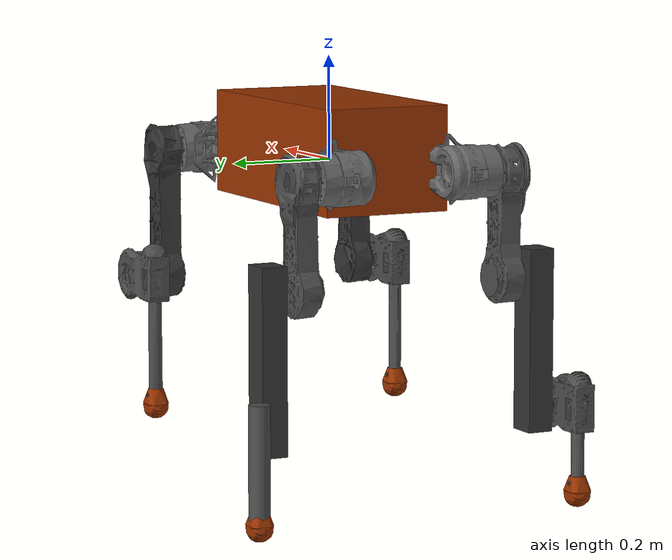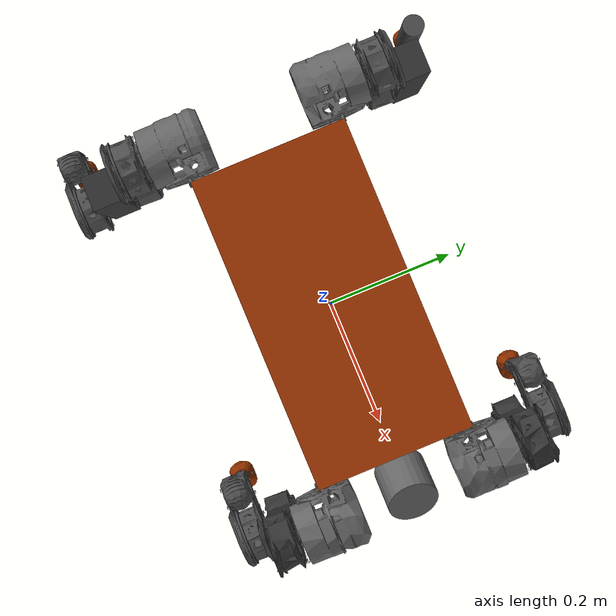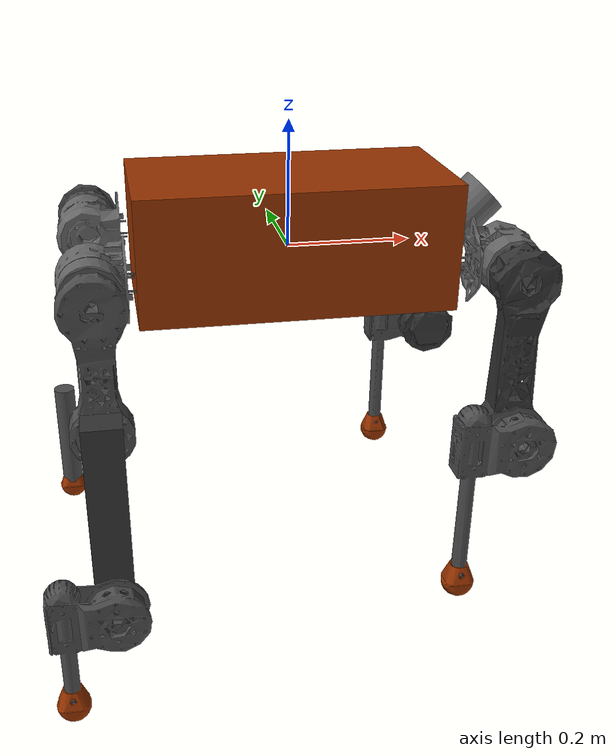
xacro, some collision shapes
<?xml version="1.0" encoding="utf-8"?>
<robot xmlns:xacro="http://ros.org/wiki/xacro" name="ContinuO">
  <xacro:include filename="$(find quadruped_description)/urdf/robot.gazebo"/>

  <link name="base_link" />
  <joint name="dummy_joint" type="fixed">
    <parent link="base_link" />
    <child link="base" />
  </joint>

  <material name="orange">
    <color rgba="0.12 0.15 0.2 1.0"/>
  </material>
  <material name="red">
    <color rgba="0.6 0.2 0.0 1.0"/>
  </material>
  <material name="black">
    <color rgba="0.4 0.4 0.4 1.0"/>
  </material>
  <material name="black1">
    <color rgba="0.3 0.3 0.3 1.0"/>
  </material>
  <material name="black2">
    <color rgba="0.2 0.2 0.2 1.0"/>
  </material>
  <material name="black3">
    <color rgba="0.3 0.3 0.3 1.0"/>
  </material>
  <material name="silver">
    <color rgba="0.79216 0.81961 0.93333 1"/>
  </material>
  <link
    name="base">

    <inertial>
      <origin
        xyz="-0.02 0.000061 0.008445"
        rpy="0 0 0" />
      <mass value="15.342" />
      <inertia
        ixx="131477391.556e-9"
        ixy="-35656.795e-9"
        ixz="257886.739e-9"
        iyy="328587491.167e-9"
        iyz="31766.975e-9"
        izz="423802600.524e-9" />
    </inertial>
    <visual>
      <origin
        xyz="0 0 0"
        rpy="0 0 0" />
      <geometry>
        <mesh
          filename="package://quadruped_description/meshes/base.dae" />
      </geometry>
      <material name="red"/>
    </visual>
    <collision>
      <origin
        xyz="0 0 0.02"
        rpy="0 0 0" />
      <geometry>
        <box size="0.5 0.25 0.2" />
      </geometry>
    </collision>
  </link>

  <link name="os_sensor">
    <inertial>
      <origin xyz="0 0 0" rpy="0 0 0" />
      <mass value="0.425" />
      <inertia ixx="0.0001" ixy="0" ixz="0" iyy="0.0001" iyz="0" izz="0.0001" />
    </inertial>
    <visual>
      <origin xyz="0 0 0" rpy="0 0 0" />
      <geometry>
        <cylinder radius="0.04" length="0.073" />
      </geometry>
      <material name="black" />
    </visual>
    <collision>
      <origin xyz="0 0 0" rpy="0 0 0" />
      <geometry>
        <cylinder radius="0.04" length="0.073" />
      </geometry>
    </collision>
  </link>

  <joint name="base_to_lidar" type="fixed">
    <origin xyz="0.3 0 0.05" rpy="0 0.7854 0" />
    <parent link="base" />
    <child link="os_sensor" />
  </joint>

  <link
    name="FL_SHOULDER">
    <inertial>
      <origin
        xyz="51.772e-3 21.258e-3 -0.161e-3"
        rpy="0 0 0" />
      <mass
        value="1.276" />
      <inertia
        ixx="1862413.216e-9"
        ixy="34307.720e-9"
        ixz="1836.088e-9"
        iyy="1745876.060e-9"
        iyz="127.529e-9"
        izz="1887209.589e-9" />
    </inertial>
    <visual>
      <origin
        xyz="0 0 0"
        rpy="0 0 0" />
      <geometry>
        <mesh
          filename="package://quadruped_description/meshes/FL_SHOULDER.dae" />
      </geometry>
      <material name="black"/>
    </visual>
    <collision>
      <origin
        xyz="0.054 0 0"
        rpy="0 0 0" />
      <geometry>
        <box size="0.1 0.1 0.1" />
      </geometry>
    </collision>
  </link>
  <joint
    name="FL_HAA"
    type="revolute">
    <origin
      xyz="0.2635 0.12291 0"
      rpy="0 0 0" />
    <parent
      link="base" />
    <child
      link="FL_SHOULDER" />
    <axis
      xyz="1 0 0" />
    <dynamics
    	damping="0.7"
    	friction="0.0" />
    <limit
      lower="-3.14"
      upper="3.14"
      effort="85.0"
      velocity="16.75" />
  </joint>
  <link
    name="FL_UPPER_LEG">
    <inertial>
      <origin
        xyz="0.009e-3 25.634e-3 -165.001e-3"
        rpy="0 0 0" />
      <mass
        value="1.367" />
      <inertia
        ixx="16273403.695e-9"
        ixy="-161.140e-9"
        ixz="12937.356e-9"
        iyy="16691309.192e-9"
        iyz="130585.208e-9"
        izz="1167540.754e-9" />
    </inertial>
    <visual>
      <origin
        xyz="0 0 0"
        rpy="0 0 0" />
      <geometry>
        <mesh
          filename="package://quadruped_description/meshes/FL_UPPER_LEG.dae" />
      </geometry>
      <material name="black2"/>
    </visual>
    <collision>
      <origin
        xyz="0 0.032 -0.1232"
        rpy="0 0 0" />
      <geometry>
        <box size="0.1 0.05 0.3" />
      </geometry>
    </collision>
  </link>
  <joint
    name="FL_HFE"
    type="revolute">
    <origin
      xyz="0.053259 0.061836 -0.0001687"
      rpy="0 0 0" />
    <parent
      link="FL_SHOULDER" />
    <child
      link="FL_UPPER_LEG" />
    <axis
      xyz="0 1 0" />
    <dynamics
    	damping="0.9"
    	friction="0.0" />
    <limit
      lower="-3.14"
      upper="3.14"
      effort="80.0"
      velocity="23.04" />
  </joint>
  <link
    name="FL_LOWER_LEG">
    <inertial>
      <origin
        xyz="-41.308e-3 34.919e-3 -47.598e-3"
        rpy="0 0 0" />
      <mass
        value="0.759" />
      <inertia
        ixx="7966011.909e-9"
        ixy=" -9387.703e-9"
        ixz="1312983.562e-9"
        iyy="9247408.954e-9"
        iyz="-2373.514e-9"
        izz="1638567.052e-9" />
    </inertial>
    <visual>
      <origin
        xyz="0 0 0"
        rpy="0 0 0" />
      <geometry>
        <mesh
          filename="package://quadruped_description/meshes/FL_LOWER_LEG.dae" />
      </geometry>
      <material name="black3"/>
    </visual>
    <collision>
      <origin
        xyz="-0.0772 0.035 -0.09"
        rpy="0 0 0" />
      <geometry>
        <cylinder length="0.3" radius="0.02"/>
      </geometry>
    </collision>
  </link>
  <joint
    name="FL_KFE"
    type="revolute">
    <origin
      xyz="0 0.0465 -0.2465"
      rpy="0 0 0" />
    <parent
      link="FL_UPPER_LEG" />
    <child
      link="FL_LOWER_LEG" />
    <axis
      xyz="0 1 0" />
    <dynamics
    	damping="0.9"
    	friction="0.0" />
    <limit
      lower="-3.14"
      upper="3.14"
      effort="80.0"
      velocity="23.04" />
  </joint>
  <link
    name="FL_FOOT">
    <inertial>
      <origin
        xyz="35.896e-3 -0.081e-3 186.367e-3"
        rpy="0 0 0" />
      <mass
        value="0.01" />
      <inertia
        ixx="7966011.909e-9"
        ixy="-9387.703e-9"
        ixz="1312983.562e-9"
        iyy="9247408.954e-9"
        iyz="-2373.514e-9"
        izz="1638567.052e-9" />
    </inertial>
    <visual>
      <origin
        xyz="0 0 0"
        rpy="0 0 0" />
      <geometry>
        <mesh
          filename="package://quadruped_description/meshes/FL_FOOT.dae" />
      </geometry>
      <material name="red"/>
    </visual>
    <collision>
      <origin
        xyz="0 0 -0.02"
        rpy="0 0 0" />
      <geometry>
        <sphere radius="0.0267" />
      </geometry>
    </collision>
  </link>
  <joint
    name="FL_FOOT_JOINT"
    type="fixed"
    dont_collapse="true">
    <origin
      xyz="-0.077204 0.035 -0.23396"
      rpy="0 0 0" />
    <parent
      link="FL_LOWER_LEG" />
    <child
      link="FL_FOOT" />
    <axis
      xyz="0 0 0" />
  </joint>
  <link
    name="FR_SHOULDER">
    <inertial>
      <origin
        xyz="51.772e-3 -21.258e-3 -0.161e-3"
        rpy="0 0 0" />
      <mass
        value="1.276" />
      <inertia
        ixx="1862413.216e-9"
        ixy="-34307.720e-9"
        ixz="1836.088e-9"
        iyy="1745876.060e-9"
        iyz="-127.529e-9"
        izz="1887209.589e-9" />
    </inertial>
    <visual>
      <origin
        xyz="0 0 0"
        rpy="0 0 0" />
      <geometry>
        <mesh
          filename="package://quadruped_description/meshes/FR_SHOULDER.dae" />
      </geometry>
      <material name="black"/>
    </visual>
    <collision>
      <origin
        xyz="0.054 0 0"
        rpy="0 0 0" />
      <geometry>
        <box size="0.1 0.1 0.1" />
      </geometry>
    </collision>
  </link>
  <joint
    name="FR_HAA"
    type="revolute">
    <origin
      xyz="0.2635 -0.12291 0"
      rpy="0 0 0" />
    <parent
      link="base" />
    <child
      link="FR_SHOULDER" />
    <axis
      xyz="1 0 0" />
    <dynamics
    	damping="0.7"
    	friction="0.0" />
    <limit
      lower="-3.14"
      upper="3.14"
      effort="85.0"
      velocity="16.75" />
  </joint>
  <link
    name="FR_UPPER_LEG">
    <inertial>
      <origin
        xyz="0.009e-3 -25.634e-3 -165.001e-3"
        rpy="0 0 0" />
      <mass
        value="1.367" />
      <inertia
        ixx="16273403.695e-9"
        ixy="161.140e-9"
        ixz="12937.356e-9"
        iyy="16691309.192e-9"
        iyz="-130585.208e-9"
        izz="1167540.754e-9" />
    </inertial>
    <visual>
      <origin
        xyz="0 0 0"
        rpy="0 0 0" />
      <geometry>
        <mesh
          filename="package://quadruped_description/meshes/FR_UPPER_LEG.dae" />
      </geometry>
      <material name="black2"/>
    </visual>
    <collision>
      <origin
        xyz="0 -0.028 -0.1232"
        rpy="0 0 0" />
      <geometry>
        <box size="0.1 0.05 0.3" />
      </geometry>
    </collision>
  </link>
  <joint
    name="FR_HFE"
    type="revolute">
    <origin
      xyz="0.053259 -0.061836 9.9925E-05"
      rpy="0 0 0" />
    <parent
      link="FR_SHOULDER" />
    <child
      link="FR_UPPER_LEG" />
    <axis
      xyz="0 1 0" />
    <dynamics
    	damping="0.9"
    	friction="0.0" />
    <limit
      lower="-3.14"
      upper="3.14"
      effort="80.0"
      velocity="23.04" />
  </joint>
  <link
    name="FR_LOWER_LEG">
    <inertial>
      <origin
        xyz="-41.308e-3 -34.919e-3 -47.598e-3"
        rpy="0 0 0" />
      <mass
        value="0.759" />
      <inertia
        ixx="7966011.909e-9"
        ixy=" 9387.703e-9"
        ixz="1312983.562e-9"
        iyy="9247408.954e-9"
        iyz="2373.514e-9"
        izz="1638567.052e-9" />
    </inertial>
    <visual>
      <origin
        xyz="0 0 0"
        rpy="0 0 0" />
      <geometry>
        <mesh
          filename="package://quadruped_description/meshes/FR_LOWER_LEG.dae" />
      </geometry>
      <material name="black3"/>
    </visual>
    <collision>
      <origin
        xyz="-0.0772 -0.035 -0.09"
        rpy="0 0 0" />
      <geometry>
        <cylinder length="0.3" radius="0.02"/>
      </geometry>
    </collision>
  </link>
  <joint
    name="FR_KFE"
    type="revolute">
    <origin
      xyz="0 -0.0465 -0.2465"
      rpy="0 0 0" />
    <parent
      link="FR_UPPER_LEG" />
    <child
      link="FR_LOWER_LEG" />
    <axis
      xyz="0 1 0" />
    <dynamics
    	damping="0.9"
    	friction="0.0" />
    <limit
      lower="-3.14"
      upper="3.14"
      effort="80.0"
      velocity="23.04" />
  </joint>
  <link
    name="FR_FOOT">
    <inertial>
      <origin
        xyz="35.896e-3 0.081e-3 186.367e-3"
        rpy="0 0 0" />
      <mass
        value="0.01" />
      <inertia
        ixx="7966011.909e-9"
        ixy="9387.703e-9"
        ixz="1312983.562e-9"
        iyy="9247408.954e-9"
        iyz="2373.514e-9"
        izz="1638567.052e-9" />
    </inertial>
    <visual>
      <origin
        xyz="0 0 0"
        rpy="0 0 0" />
      <geometry>
        <mesh
          filename="package://quadruped_description/meshes/FR_FOOT.dae" />
      </geometry>
      <material name="red"/>
    </visual>
    <collision>
      <origin
        xyz="0 0 -0.02"
        rpy="0 0 0" />
      <geometry>
        <sphere radius="0.0267" />
      </geometry>
    </collision>
  </link>
  <joint
    name="FR_FOOT_JOINT"
    type="fixed"
    dont_collapse="true">
    <origin
      xyz="-0.07715 -0.035 -0.23396"
      rpy="0 0 0" />
    <parent
      link="FR_LOWER_LEG" />
    <child
      link="FR_FOOT" />
    <axis
      xyz="0 0 0" />
  </joint>
  <link
    name="HL_SHOULDER">
    <inertial>
      <origin
        xyz="-51.779e-3 21.258e-3 0.042e-3"
        rpy="0 0 0" />
      <mass
        value="1.276" />
      <inertia
        ixx="1862438.249e-9"
        ixy="-34011.999e-9"
        ixz="-510.439e-9"
        iyy="1745191.990e-9"
        iyz="-556.317e-9"
        izz="1886523.749e-9" />
    </inertial>
    <visual>
      <origin
        xyz="0 0 0"
        rpy="0 0 0" />
      <geometry>
        <mesh
          filename="package://quadruped_description/meshes/HL_SHOULDER.dae" />
      </geometry>
      <material name="black"/>
    </visual>
    <collision>
      <origin
        xyz="-0.054 0 0"
        rpy="0 0 0" />
      <geometry>
        <box size="0.1 0.1 0.1" />
      </geometry>
    </collision>
  </link>
  <joint
    name="HL_HAA"
    type="revolute">
    <origin
      xyz="-0.2635 0.12291 0"
      rpy="0 0 0" />
    <parent
      link="base" />
    <child
      link="HL_SHOULDER" />
    <axis
      xyz="1 0 0" />
    <dynamics
    	damping="0.7"
    	friction="0.0" />
    <limit
      lower="-3.14"
      upper="3.14"
      effort="85.0"
      velocity="16.75" />
  </joint>
  <link
    name="HL_UPPER_LEG">
    <inertial>
      <origin
        xyz="0.003e-3 25.470e-3 -134.787e-3"
        rpy="0 0 0" />
      <mass
        value="1.315" />
      <inertia
        ixx="11053712.614e-9"
        ixy="-166.896e-9"
        ixz="13255.147e-9"
        iyy="11463665.170e-9"
        iyz="105489.550e-9"
        izz="1146965.026e-9" />
    </inertial>
    <visual>
      <origin
        xyz="0 0 0"
        rpy="0 0 0" />
      <geometry>
        <mesh
          filename="package://quadruped_description/meshes/HL_UPPER_LEG.dae" />
      </geometry>
      <material name="black1"/>
    </visual>
    <collision>
      <origin
        xyz="0 0.028 -0.1005"
        rpy="0 0 0" />
      <geometry>
        <box size="0.08 0.05 0.26" />
      </geometry>
    </collision>
  </link>
  <joint
    name="HL_HFE"
    type="revolute">
    <origin
      xyz="-0.053259 0.061836 9.9925E-05"
      rpy="0 0 0" />
    <parent
      link="HL_SHOULDER" />
    <child
      link="HL_UPPER_LEG" />
    <axis
      xyz="0 1 0" />
    <dynamics
    	damping="0.9"
    	friction="0.0" />
    <limit
      lower="-3.14"
      upper="3.14"
      effort="85.0"
      velocity="16.75" />
  </joint>
  <link
    name="HL_LOWER_LEG">
    <inertial>
      <origin
        xyz=" 0.005e-3 41.724e-3 -160.773e-3"
        rpy="0 0 0" />
      <mass
        value="1.406" />
      <inertia
        ixx="17322697.149e-9"
        ixy="-166.299e-9"
        ixz="13745.847e-9"
        iyy="17702007.589e-9"
        iyz=" -74976.358e-9"
        izz="1218582.595e-9" />
    </inertial>
    <visual>
      <origin
        xyz="0 0 0"
        rpy="0 0 0" />
      <geometry>
        <mesh
          filename="package://quadruped_description/meshes/HL_LOWER_LEG.dae" />
      </geometry>
      <material name="black2"/>
    </visual>
    <collision>
      <origin
        xyz="0 0.045 -0.1233"
        rpy="0 0 0" />
      <geometry>
        <box size="0.06 0.05 0.35" />
      </geometry>
    </collision>
  </link>
  <joint
    name="HL_KFE"
    type="revolute">
    <origin
      xyz="0 0.0465 -0.201"
      rpy="0 0 0" />
    <parent
      link="HL_UPPER_LEG" />
    <child
      link="HL_LOWER_LEG" />
    <axis
      xyz="0 1 0" />
    <dynamics
    	damping="0.9"
    	friction="0.0" />
    <limit
      lower="-3.14"
      upper="3.14"
      effort="80.0"
      velocity="23.04" />
  </joint>
  <link
    name="HL_SHANK">
    <inertial>
      <origin
        xyz="-40.122e-3 34.916e-3 -27.409e-3"
        rpy="0 0 0" />
      <mass
        value="0.734" />
      <inertia
        ixx="3597127.046e-9"
        ixy="-9314.367e-9"
        ixz="762796.820e-9"
        iyy="4846202.923e-9"
        iyz="-1133.290e-9"
        izz="1602960.774e-9" />
    </inertial>
    <visual>
      <origin
        xyz="0 0 0"
        rpy="0 0 0" />
      <geometry>
        <mesh
          filename="package://quadruped_description/meshes/HL_SHANK.dae" />
      </geometry>
      <material name="black3"/>
    </visual>
    <collision>
      <origin
        xyz="-0.0772 0.035 -0.045"
        rpy="0 0 0" />
      <geometry>
        <cylinder length="0.21" radius="0.02"/>
      </geometry>
    </collision>
  </link>
  <joint
    name="HL_AFE"
    type="revolute">
    <origin
      xyz="0 0.0635 -0.2465"
      rpy="0 0 0" />
    <parent
      link="HL_LOWER_LEG" />
    <child
      link="HL_SHANK" />
    <axis
      xyz="0 1 0" />
    <dynamics
    	damping="0.9"
    	friction="0.0" />
    <limit
      lower="-3.14"
      upper="3.14"
      effort="80.0"
      velocity="23.04" />
  </joint>
  <link
    name="HL_FOOT">
    <inertial>
      <origin
        xyz="37.082e-3 -0.084e-3 116.555e-3"
        rpy="0 0 0" />
      <mass
        value="0.01" />
      <inertia
        ixx="3597127.046e-9"
        ixy="-9314.367e-9"
        ixz="762796.820e-9"
        iyy="4846202.923e-9"
        iyz="-1133.290e-9"
        izz="1602960.774e-9" />
    </inertial>
    <visual>
      <origin
        xyz="0 0 0"
        rpy="0 0 0" />
      <geometry>
        <mesh
          filename="package://quadruped_description/meshes/HL_FOOT.dae" />
      </geometry>
      <material name="red"/>
    </visual>
    <collision>
      <origin
        xyz="0 0 -0.02"
        rpy="0 0 0" />
      <geometry>
        <sphere radius="0.0267" />
      </geometry>
    </collision>
  </link>
  <joint
    name="HL_FOOT_JOINT"
    type="fixed"
    dont_collapse="true">
    <origin
      xyz="-0.077204 0.035 -0.14396"
      rpy="0 0 0" />
    <parent
      link="HL_SHANK" />
    <child
      link="HL_FOOT" />
    <axis
      xyz="0 0 0" />
  </joint>
  <link
    name="HR_SHOULDER">
    <inertial>
      <origin
        xyz="-51.779e-3 -21.258e-3 0.042e-3"
        rpy="0 0 0" />
      <mass
        value="1.276" />
      <inertia
        ixx="1862438.249e-9"
        ixy="34011.999e-9"
        ixz="-510.439e-9"
        iyy="1745191.990e-9"
        iyz="556.317e-9"
        izz="1886523.749e-9" />
    </inertial>
    <visual>
      <origin
        xyz="0 0 0"
        rpy="0 0 0" />
      <geometry>
        <mesh
          filename="package://quadruped_description/meshes/HR_SHOULDER.dae" />
      </geometry>
      <material name="black"/>
    </visual>
    <collision>
      <origin
        xyz="-0.054 0 0"
        rpy="0 0 0" />
      <geometry>
        <box size="0.1 0.1 0.1" />
      </geometry>
    </collision>
  </link>
  <joint
    name="HR_HAA"
    type="revolute">
    <origin
      xyz="-0.2635 -0.12291 0"
      rpy="0 0 0" />
    <parent
      link="base" />
    <child
      link="HR_SHOULDER" />
    <axis
      xyz="1 0 0" />
    <dynamics
    	damping="0.7"
    	friction="0.0" />
    <limit
      lower="-3.14"
      upper="3.14"
      effort="85.0"
      velocity="16.75" />
  </joint>
  <link
    name="HR_UPPER_LEG">
    <inertial>
      <origin
        xyz="0.003e-3 -25.470e-3 -134.787e-3"
        rpy="0 0 0" />
      <mass
        value="1.315" />
      <inertia
        ixx="11053712.614e-9"
        ixy="166.896e-9"
        ixz="13255.147e-9"
        iyy="11463665.170e-9"
        iyz="-105489.550e-9"
        izz="1146965.026e-9" />
    </inertial>
    <visual>
      <origin
        xyz="0 0 0"
        rpy="0 0 0" />
      <geometry>
        <mesh
          filename="package://quadruped_description/meshes/HR_UPPER_LEG.dae" />
      </geometry>
      <material name="black1"/>
    </visual>
    <collision>
      <origin
        xyz="0 -0.028 -0.1005"
        rpy="0 0 0" />
      <geometry>
        <box size="0.08 0.05 0.26" />
      </geometry>
    </collision>
  </link>
  <joint
    name="HR_HFE"
    type="revolute">
    <origin
      xyz="-0.053259 -0.061836 -0.0001687"
      rpy="0 0 0" />
    <parent
      link="HR_SHOULDER" />
    <child
      link="HR_UPPER_LEG" />
    <axis
      xyz="0 1 0" />
    <dynamics
    	damping="0.9"
    	friction="0.0" />
    <limit
      lower="-3.14"
      upper="3.14"
      effort="85.0"
      velocity="16.75" />
  </joint>
  <link
    name="HR_LOWER_LEG">
    <inertial>
      <origin
        xyz="-40.122e-3 -34.916e-3 -27.409e-3"
        rpy="0 0 0" />
      <!-- Fixed incorrect mass -->
      <mass
        value="1.406" />
      <inertia
        ixx="3597127.046e-9"
        ixy="9314.367e-9"
        ixz="762796.820e-9"
        iyy="4846202.923e-9"
        iyz="1133.290e-9"
        izz="1602960.774e-9" />
    </inertial>
    <visual>
      <origin
        xyz="0 0 0"
        rpy="0 0 0" />
      <geometry>
        <mesh
          filename="package://quadruped_description/meshes/HR_LOWER_LEG.dae" />
      </geometry>
      <material name="black2"/>
    </visual>
    <collision>
      <origin
        xyz="0 -0.045 -0.1232"
        rpy="0 0 0" />
      <geometry>
        <box size="0.06 0.05 0.35" />
      </geometry>
    </collision>
  </link>
  <joint
    name="HR_KFE"
    type="revolute">
    <origin
      xyz="0 -0.0465 -0.201"
      rpy="0 0 0" />
    <parent
      link="HR_UPPER_LEG" />
    <child
      link="HR_LOWER_LEG" />
    <axis
      xyz="0 1 0" />
    <dynamics
    	damping="0.9"
    	friction="0.0" />
    <limit
      lower="-3.14"
      upper="3.14"
      effort="80.0"
      velocity="23.04" />
  </joint>
  <link
    name="HR_SHANK">
    <inertial>
      <origin
        xyz="-40.122e-3 -34.916e-3 -27.409e-3"
        rpy="0 0 0" />
      <mass
        value="0.734" />
      <inertia
        ixx="3597127.046e-9"
        ixy="9314.367e-9"
        ixz="762796.820e-9"
        iyy="4846202.923e-9"
        iyz="1133.290e-9"
        izz="1602960.774e-9" />
    </inertial>
    <visual>
      <origin
        xyz="0 0 0"
        rpy="0 0 0" />
      <geometry>
        <mesh
          filename="package://quadruped_description/meshes/HR_SHANK.dae" />
      </geometry>
      <material name="black3"/>
    </visual>
    <collision>
      <origin
        xyz="-0.0772 -0.035 -0.045"
        rpy="0 0 0" />
      <geometry>
        <cylinder length="0.21" radius="0.02"/>
      </geometry>
    </collision>
  </link>
  <joint
    name="HR_AFE"
    type="revolute">
    <origin
      xyz="0 -0.0635 -0.2465"
      rpy="0 0 0" />
    <parent
      link="HR_LOWER_LEG" />
    <child
      link="HR_SHANK" />
    <axis
      xyz="0 1 0" />
    <dynamics
    	damping="0.9"
    	friction="0.0" />
    <limit
      lower="-3.14"
      upper="3.14"
      effort="80.0"
      velocity="23.04" />
  </joint>
  <link
    name="HR_FOOT">
    <inertial>
      <origin
        xyz="37.082e-3 0.084e-3 116.555e-3"
        rpy="0 0 0" />
      <mass
        value="0.01" />
      <inertia
        ixx="3597127.046e-9"
        ixy="9314.367e-9"
        ixz="762796.820e-9"
        iyy="4846202.923e-9"
        iyz="1133.290e-9"
        izz="1602960.774e-9" />
    </inertial>
    <visual>
      <origin
        xyz="0 0 0"
        rpy="0 0 0" />
      <geometry>
        <mesh
          filename="package://quadruped_description/meshes/HR_FOOT.dae" />
      </geometry>
      <material name="red"/>
    </visual>
    <collision>
      <origin
        xyz="0 0 -0.02"
        rpy="0 0 0" />
      <geometry>
        <sphere radius="0.0267" />
      </geometry>
    </collision>
  </link>
  <joint
    name="HR_FOOT_JOINT"
    type="fixed"
    dont_collapse="true">
    <origin
      xyz="-0.077203 -0.035 -0.14396"
      rpy="0 0 0" />
    <parent
      link="HR_SHANK" />
    <child
      link="HR_FOOT" />
    <axis
      xyz="0 0 0" />
  </joint>

  <gazebo>
    <plugin name="gazebo_ros_control" filename="libgazebo_ros_control.so">
      <robotNamespace>/</robotNamespace>
    </plugin>
  </gazebo>
  <gazebo reference="os_sensor">
    <sensor type="ray" name="ouster_sensor">
      <pose>0 0 0 0 0 0</pose>
      <visualize>false</visualize>
      <always_on>true</always_on>
      <update_rate>10.0</update_rate>
      <ray>
        <scan>
          <horizontal>
            <samples>512</samples>
            <resolution>1</resolution>
            <min_angle>-1.5708</min_angle>
            <max_angle>1.5708</max_angle>
          </horizontal>
          <vertical>
            <samples>64</samples>
            <resolution>1</resolution>
            <min_angle>-0.785398</min_angle> <max_angle>0.785398</max_angle>
          </vertical>
        </scan>
        <range>
          <min>0.5</min>
          <max>100.0</max>
          <resolution>0.01</resolution>
        </range>
        <noise>
          <type>gaussian</type>
          <mean>0.0</mean>
          <stddev>0.01</stddev>
        </noise>
      </ray>
      <plugin name="gazebo_ros_laser_controller" filename="libgazebo_ros_velodyne_laser.so">
        <topicName>/ouster/points</topicName>
        <frameName>os_sensor</frameName>
        <organize_cloud>false</organize_cloud>
        <min_range>0.1</min_range>
        <max_range>100.0</max_range>
        <gaussianNoise>0.01</gaussianNoise>
      </plugin>
    </sensor>
  </gazebo>
  <gazebo>
    <plugin name="ground_truth_odometry" filename="libgazebo_ros_p3d.so">
      <alwaysOn>true</alwaysOn>
      <bodyName>base_link</bodyName>
      <updateRate>50.0</updateRate>
      <topicName>/odom</topicName>
      <gaussianNoise>0.01</gaussianNoise>
      <frameName>world</frameName>
      <xyzOffsets>0 0 0</xyzOffsets>
      <rpyOffsets>0 0 0</rpyOffsets>
    </plugin>
  </gazebo>

<transmission name="trans_FL_HAA">
  <type>transmission_interface/SimpleTransmission</type>
  <joint name="FL_HAA">
    <hardwareInterface>EffortJointInterface</hardwareInterface>
  </joint>
  <actuator name="motor_FL_HAA">
    <hardwareInterface>EffortJointInterface</hardwareInterface>
    <mechanicalReduction>1</mechanicalReduction>
  </actuator>
</transmission>

<transmission name="trans_FL_HFE">
  <type>transmission_interface/SimpleTransmission</type>
  <joint name="FL_HFE">
    <hardwareInterface>EffortJointInterface</hardwareInterface>
  </joint>
  <actuator name="motor_FL_HFE">
    <hardwareInterface>EffortJointInterface</hardwareInterface>
    <mechanicalReduction>1</mechanicalReduction>
  </actuator>
</transmission>

<transmission name="trans_FL_KFE">
  <type>transmission_interface/SimpleTransmission</type>
  <joint name="FL_KFE">
    <hardwareInterface>EffortJointInterface</hardwareInterface>
  </joint>
  <actuator name="motor_FL_KFE">
    <hardwareInterface>EffortJointInterface</hardwareInterface>
    <mechanicalReduction>1</mechanicalReduction>
  </actuator>
</transmission>

<transmission name="trans_FR_HAA">
  <type>transmission_interface/SimpleTransmission</type>
  <joint name="FR_HAA">
    <hardwareInterface>EffortJointInterface</hardwareInterface>
  </joint>
  <actuator name="motor_FR_HAA">
    <hardwareInterface>EffortJointInterface</hardwareInterface>
    <mechanicalReduction>1</mechanicalReduction>
  </actuator>
</transmission>

<transmission name="trans_FR_HFE">
  <type>transmission_interface/SimpleTransmission</type>
  <joint name="FR_HFE">
    <hardwareInterface>EffortJointInterface</hardwareInterface>
  </joint>
  <actuator name="motor_FR_HFE">
    <hardwareInterface>EffortJointInterface</hardwareInterface>
    <mechanicalReduction>1</mechanicalReduction>
  </actuator>
</transmission>

<transmission name="trans_FR_KFE">
  <type>transmission_interface/SimpleTransmission</type>
  <joint name="FR_KFE">
    <hardwareInterface>EffortJointInterface</hardwareInterface>
  </joint>
  <actuator name="motor_FR_KFE">
    <hardwareInterface>EffortJointInterface</hardwareInterface>
    <mechanicalReduction>1</mechanicalReduction>
  </actuator>
</transmission>

<transmission name="trans_HL_HAA">
  <type>transmission_interface/SimpleTransmission</type>
  <joint name="HL_HAA">
    <hardwareInterface>EffortJointInterface</hardwareInterface>
  </joint>
  <actuator name="motor_HL_HAA">
    <hardwareInterface>EffortJointInterface</hardwareInterface>
    <mechanicalReduction>1</mechanicalReduction>
  </actuator>
</transmission>

<transmission name="trans_HL_HFE">
  <type>transmission_interface/SimpleTransmission</type>
  <joint name="HL_HFE">
    <hardwareInterface>EffortJointInterface</hardwareInterface>
  </joint>
  <actuator name="motor_HL_HFE">
    <hardwareInterface>EffortJointInterface</hardwareInterface>
    <mechanicalReduction>1</mechanicalReduction>
  </actuator>
</transmission>

<transmission name="trans_HL_KFE">
  <type>transmission_interface/SimpleTransmission</type>
  <joint name="HL_KFE">
    <hardwareInterface>EffortJointInterface</hardwareInterface>
  </joint>
  <actuator name="motor_HL_KFE">
    <hardwareInterface>EffortJointInterface</hardwareInterface>
    <mechanicalReduction>1</mechanicalReduction>
  </actuator>
</transmission>

<transmission name="trans_HL_AFE">
  <type>transmission_interface/SimpleTransmission</type>
  <joint name="HL_AFE">
    <hardwareInterface>EffortJointInterface</hardwareInterface>
  </joint>
  <actuator name="motor_HL_AFE">
    <hardwareInterface>EffortJointInterface</hardwareInterface>
    <mechanicalReduction>1</mechanicalReduction>
  </actuator>
</transmission>

<transmission name="trans_HR_HAA">
  <type>transmission_interface/SimpleTransmission</type>
  <joint name="HR_HAA">
    <hardwareInterface>EffortJointInterface</hardwareInterface>
  </joint>
  <actuator name="motor_HR_HAA">
    <hardwareInterface>EffortJointInterface</hardwareInterface>
    <mechanicalReduction>1</mechanicalReduction>
  </actuator>
</transmission>

<transmission name="trans_HR_HFE">
  <type>transmission_interface/SimpleTransmission</type>
  <joint name="HR_HFE">
    <hardwareInterface>EffortJointInterface</hardwareInterface>
  </joint>
  <actuator name="motor_HR_HFE">
    <hardwareInterface>EffortJointInterface</hardwareInterface>
    <mechanicalReduction>1</mechanicalReduction>
  </actuator>
</transmission>

<transmission name="trans_HR_KFE">
  <type>transmission_interface/SimpleTransmission</type>
  <joint name="HR_KFE">
    <hardwareInterface>EffortJointInterface</hardwareInterface>
  </joint>
  <actuator name="motor_HR_KFE">
    <hardwareInterface>EffortJointInterface</hardwareInterface>
    <mechanicalReduction>1</mechanicalReduction>
  </actuator>
</transmission>

<transmission name="trans_HR_AFE">
  <type>transmission_interface/SimpleTransmission</type>
  <joint name="HR_AFE">
    <hardwareInterface>EffortJointInterface</hardwareInterface>
  </joint>
  <actuator name="motor_HR_AFE">
    <hardwareInterface>EffortJointInterface</hardwareInterface>
    <mechanicalReduction>1</mechanicalReduction>
  </actuator>
</transmission>

<!-- ===== IMU link + joint ===== -->
  <link name="imu_link">
    <inertial>
      <origin xyz="0 0 0" rpy="0 0 0"/>
      <mass value="0.001"/>
      <inertia ixx="1e-6" ixy="0" ixz="0" iyy="1e-6" iyz="0" izz="1e-6"/>
    </inertial>
    <visual>
      <origin xyz="0 0 0" rpy="0 0 0"/>
      <geometry><sphere radius="0.01"/></geometry>
    </visual>
    <collision>
      <origin xyz="0 0 0" rpy="0 0 0"/>
      <geometry><sphere radius="0.011"/></geometry>
    </collision>
  </link>

  <joint name="imu_joint" type="fixed">
    <parent link="base"/>
    <child  link="imu_link"/>

    <origin xyz="0 0 0.05" rpy="0 0 0"/>
  </joint>

</robot>
